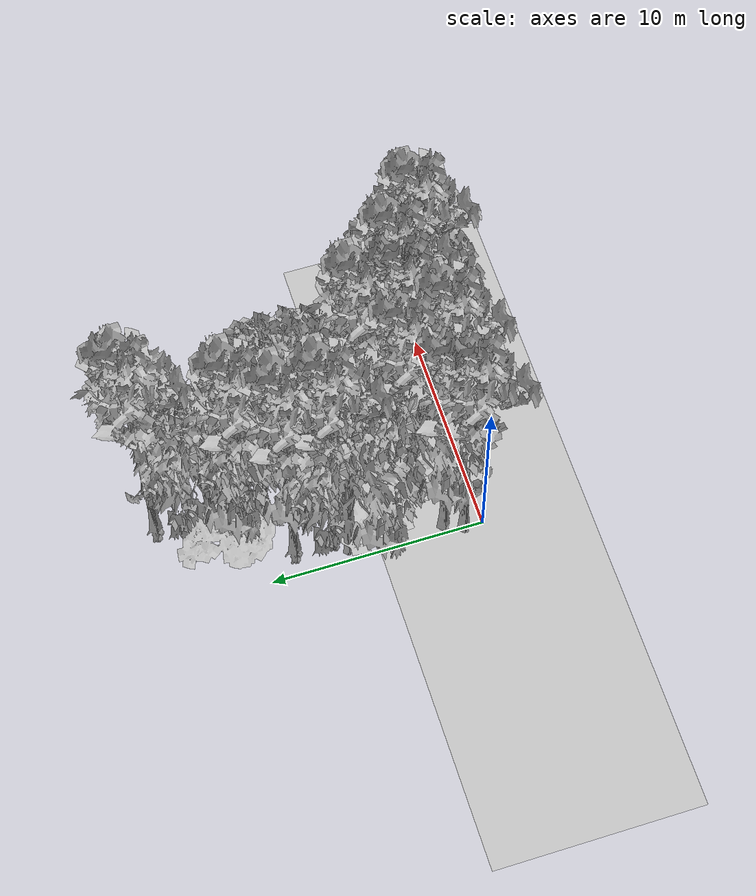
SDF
<sdf version="1.7">
 <world name="default">
  <model name="ground_plane">
   <static>1</static>
   <link name="link">
    <collision name="collision">
     <pose>-50 0 0 0 -0 0</pose>
     <geometry><plane><normal>0 0 1</normal><size>100 100</size></plane></geometry>
     <surface><contact><ode><min_depth>0.01</min_depth><max_vel>0</max_vel></ode></contact></surface>
    </collision>
    <visual name="grass">
     <cast_shadows>0</cast_shadows>
     <geometry>
      <mesh>
       <scale>0.5814285714285714 0.18142857142857144 0.1</scale>
       <uri>file://grass_plane/meshes/grass_plane.dae</uri>
      </mesh>
     </geometry>
    </visual>
   </link>
  </model>
  <model name="Tree 1">
   <static>1</static>
   <pose>2.9768143584794586 2.1918834567805376 0 1.57079 -0 0</pose>
   <link name="link">
    <collision name="collision">
     <geometry><mesh><scale>4 2.5 4</scale><uri>model://tree_1/meshes/tree_1.obj</uri></mesh></geometry>
    </collision>
    <visual name="visual">
     <geometry><mesh><scale>4 2.5 4</scale><uri>model://tree_1/meshes/tree_1.obj</uri></mesh></geometry>
    </visual>
   </link>
  </model>
  <model name="Tree 11">
   <static>1</static>
   <pose>1.2711613512293525 6.7308629670485765 0 1.57079 -0 0</pose>
   <link name="link">
    <collision name="collision">
     <geometry><mesh><scale>3.5 5 3.5</scale><uri>model://tree_9/meshes/tree_9.obj</uri></mesh></geometry>
    </collision>
    <visual name="visual">
     <geometry><mesh><scale>3.5 5 3.5</scale><uri>model://tree_9/meshes/tree_9.obj</uri></mesh></geometry>
    </visual>
   </link>
  </model>
  <model name="Tree 25">
   <static>1</static>
   <pose>8.711538809172538 0.8453942712679599 0 1.57079 -0 0</pose>
   <link name="link">
    <collision name="collision">
     <geometry><mesh><scale>3.5 5 3.5</scale><uri>model://tree_2/meshes/tree_2.obj</uri></mesh></geometry>
    </collision>
    <visual name="visual">
     <geometry><mesh><scale>3.5 5 3.5</scale><uri>model://tree_2/meshes/tree_2.obj</uri></mesh></geometry>
    </visual>
   </link>
  </model>
  <model name="Tree 80">
   <static>1</static>
   <pose>2.5931984307938123 3.0056339749698537 0 1.57079 -0 0</pose>
   <link name="link">
    <collision name="collision">
     <geometry><mesh><scale>3.5 5 3.5</scale><uri>model://tree_9/meshes/tree_9.obj</uri></mesh></geometry>
    </collision>
    <visual name="visual">
     <geometry><mesh><scale>3.5 5 3.5</scale><uri>model://tree_9/meshes/tree_9.obj</uri></mesh></geometry>
    </visual>
   </link>
  </model>
  <model name="Tree 92">
   <static>1</static>
   <pose>5.135952587438652 2.3632091822381476 0 1.57079 -0 0</pose>
   <link name="link">
    <collision name="collision">
     <geometry><mesh><scale>3.5 5 3.5</scale><uri>model://tree_9/meshes/tree_9.obj</uri></mesh></geometry>
    </collision>
    <visual name="visual">
     <geometry><mesh><scale>3.5 5 3.5</scale><uri>model://tree_9/meshes/tree_9.obj</uri></mesh></geometry>
    </visual>
   </link>
  </model>
  <model name="Tree 104">
   <static>1</static>
   <pose>5.468760467974612 2.2380477263403655 0 1.57079 -0 0</pose>
   <link name="link">
    <collision name="collision">
     <geometry><mesh><scale>3.5 5 3.5</scale><uri>model://tree_9/meshes/tree_9.obj</uri></mesh></geometry>
    </collision>
    <visual name="visual">
     <geometry><mesh><scale>3.5 5 3.5</scale><uri>model://tree_9/meshes/tree_9.obj</uri></mesh></geometry>
    </visual>
   </link>
  </model>
  <model name="Tree 111">
   <static>1</static>
   <pose>2.5336864234873957 9.504444543869852 0 1.57079 -0 0</pose>
   <link name="link">
    <collision name="collision">
     <geometry><mesh><scale>3.5 5 3.5</scale><uri>model://tree_2/meshes/tree_2.obj</uri></mesh></geometry>
    </collision>
    <visual name="visual">
     <geometry><mesh><scale>3.5 5 3.5</scale><uri>model://tree_2/meshes/tree_2.obj</uri></mesh></geometry>
    </visual>
   </link>
  </model>
  <model name="Tree 122">
   <static>1</static>
   <pose>2.3813106649626192 10.336020309960649 0 1.57079 -0 0</pose>
   <link name="link">
    <collision name="collision">
     <geometry><mesh><scale>3.5 5 3.5</scale><uri>model://tree_9/meshes/tree_9.obj</uri></mesh></geometry>
    </collision>
    <visual name="visual">
     <geometry><mesh><scale>3.5 5 3.5</scale><uri>model://tree_9/meshes/tree_9.obj</uri></mesh></geometry>
    </visual>
   </link>
  </model>
  <model name="Tree 153">
   <static>1</static>
   <pose>5.225008590443302 4.149534002863987 0 1.57079 -0 0</pose>
   <link name="link">
    <collision name="collision">
     <geometry><mesh><scale>3.5 5 3.5</scale><uri>model://tree_9/meshes/tree_9.obj</uri></mesh></geometry>
    </collision>
    <visual name="visual">
     <geometry><mesh><scale>3.5 5 3.5</scale><uri>model://tree_9/meshes/tree_9.obj</uri></mesh></geometry>
    </visual>
   </link>
  </model>
  <model name="Tree 159">
   <static>1</static>
   <pose>1.1919828114035198 8.599450049801973 0 1.57079 -0 0</pose>
   <link name="link">
    <collision name="collision">
     <geometry><mesh><scale>3.5 5 3.5</scale><uri>model://tree_9/meshes/tree_9.obj</uri></mesh></geometry>
    </collision>
    <visual name="visual">
     <geometry><mesh><scale>3.5 5 3.5</scale><uri>model://tree_9/meshes/tree_9.obj</uri></mesh></geometry>
    </visual>
   </link>
  </model>
  <model name="Tree 189">
   <static>1</static>
   <pose>1.5428746860918778 3.045330921053786 0 1.57079 -0 0</pose>
   <link name="link">
    <collision name="collision">
     <geometry><mesh><scale>3.5 5 3.5</scale><uri>model://tree_2/meshes/tree_2.obj</uri></mesh></geometry>
    </collision>
    <visual name="visual">
     <geometry><mesh><scale>3.5 5 3.5</scale><uri>model://tree_2/meshes/tree_2.obj</uri></mesh></geometry>
    </visual>
   </link>
  </model>
  <model name="Tree 201">
   <static>1</static>
   <pose>3.2090852516246287 0.8835617806367893 0 1.57079 -0 0</pose>
   <link name="link">
    <collision name="collision">
     <geometry><mesh><scale>3.5 5 3.5</scale><uri>model://tree_9/meshes/tree_9.obj</uri></mesh></geometry>
    </collision>
    <visual name="visual">
     <geometry><mesh><scale>3.5 5 3.5</scale><uri>model://tree_9/meshes/tree_9.obj</uri></mesh></geometry>
    </visual>
   </link>
  </model>
  <model name="Tree 224">
   <static>1</static>
   <pose>0.38586800855991754 1.777851857588825 0 1.57079 -0 0</pose>
   <link name="link">
    <collision name="collision">
     <geometry><mesh><scale>3.5 5 3.5</scale><uri>model://tree_9/meshes/tree_9.obj</uri></mesh></geometry>
    </collision>
    <visual name="visual">
     <geometry><mesh><scale>3.5 5 3.5</scale><uri>model://tree_9/meshes/tree_9.obj</uri></mesh></geometry>
    </visual>
   </link>
  </model>
  <model name="Tree 255">
   <static>1</static>
   <pose>2.4988909800807093 3.874488966499051 0 1.57079 -0 0</pose>
   <link name="link">
    <collision name="collision">
     <geometry><mesh><scale>3 2 3</scale><uri>model://tree_3/meshes/tree_3.obj</uri></mesh></geometry>
    </collision>
    <visual name="visual">
     <geometry><mesh><scale>3 2 3</scale><uri>model://tree_3/meshes/tree_3.obj</uri></mesh></geometry>
    </visual>
   </link>
  </model>
  <model name="Tree 298">
   <static>1</static>
   <pose>2.894230501235107 11.887512312333616 0 1.57079 -0 0</pose>
   <link name="link">
    <collision name="collision">
     <geometry><mesh><scale>3.5 5 3.5</scale><uri>model://tree_2/meshes/tree_2.obj</uri></mesh></geometry>
    </collision>
    <visual name="visual">
     <geometry><mesh><scale>3.5 5 3.5</scale><uri>model://tree_2/meshes/tree_2.obj</uri></mesh></geometry>
    </visual>
   </link>
  </model>
  <model name="Tree 389">
   <static>1</static>
   <pose>4.159104768891396 14.333407730832619 0 1.57079 -0 0</pose>
   <link name="link">
    <collision name="collision">
     <geometry><mesh><scale>3.5 5 3.5</scale><uri>model://tree_9/meshes/tree_9.obj</uri></mesh></geometry>
    </collision>
    <visual name="visual">
     <geometry><mesh><scale>3.5 5 3.5</scale><uri>model://tree_9/meshes/tree_9.obj</uri></mesh></geometry>
    </visual>
   </link>
  </model>
  <model name="Tree 423">
   <static>1</static>
   <pose>8.893620390219965 0.49660748641703556 0 1.57079 -0 0</pose>
   <link name="link">
    <collision name="collision">
     <geometry><mesh><scale>3.5 5 3.5</scale><uri>model://tree_9/meshes/tree_9.obj</uri></mesh></geometry>
    </collision>
    <visual name="visual">
     <geometry><mesh><scale>3.5 5 3.5</scale><uri>model://tree_9/meshes/tree_9.obj</uri></mesh></geometry>
    </visual>
   </link>
  </model>
  <model name="Tree 457">
   <static>1</static>
   <pose>5.030697210412271 7.640642308969998 0 1.57079 -0 0</pose>
   <link name="link">
    <collision name="collision">
     <geometry><mesh><scale>3.5 5 3.5</scale><uri>model://tree_2/meshes/tree_2.obj</uri></mesh></geometry>
    </collision>
    <visual name="visual">
     <geometry><mesh><scale>3.5 5 3.5</scale><uri>model://tree_2/meshes/tree_2.obj</uri></mesh></geometry>
    </visual>
   </link>
  </model>
  <model name="Tree 477">
   <static>1</static>
   <pose>0.3308922468631863 6.270582500308919 0 1.57079 -0 0</pose>
   <link name="link">
    <collision name="collision">
     <geometry><mesh><scale>3.5 5 3.5</scale><uri>model://tree_2/meshes/tree_2.obj</uri></mesh></geometry>
    </collision>
    <visual name="visual">
     <geometry><mesh><scale>3.5 5 3.5</scale><uri>model://tree_2/meshes/tree_2.obj</uri></mesh></geometry>
    </visual>
   </link>
  </model>
  <model name="Tree 484">
   <static>1</static>
   <pose>6.999295898549015 2.0139887858261964 0 1.57079 -0 0</pose>
   <link name="link">
    <collision name="collision">
     <geometry><mesh><scale>3.5 5 3.5</scale><uri>model://tree_9/meshes/tree_9.obj</uri></mesh></geometry>
    </collision>
    <visual name="visual">
     <geometry><mesh><scale>3.5 5 3.5</scale><uri>model://tree_9/meshes/tree_9.obj</uri></mesh></geometry>
    </visual>
   </link>
  </model>
  <model name="Tree 496">
   <static>1</static>
   <pose>2.256262525305985 11.274928437548176 0 1.57079 -0 0</pose>
   <link name="link">
    <collision name="collision">
     <geometry><mesh><scale>4 2.5 4</scale><uri>model://tree_1/meshes/tree_1.obj</uri></mesh></geometry>
    </collision>
    <visual name="visual">
     <geometry><mesh><scale>4 2.5 4</scale><uri>model://tree_1/meshes/tree_1.obj</uri></mesh></geometry>
    </visual>
   </link>
  </model>
  <model name="Tree 525">
   <static>1</static>
   <pose>1.7415608408153531 5.043747239571161 0 1.57079 -0 0</pose>
   <link name="link">
    <collision name="collision">
     <geometry><mesh><scale>3 2 3</scale><uri>model://tree_3/meshes/tree_3.obj</uri></mesh></geometry>
    </collision>
    <visual name="visual">
     <geometry><mesh><scale>3 2 3</scale><uri>model://tree_3/meshes/tree_3.obj</uri></mesh></geometry>
    </visual>
   </link>
  </model>
  <model name="Tree 527">
   <static>1</static>
   <pose>0.026049682932296037 0.9247518619357749 0 1.57079 -0 0</pose>
   <link name="link">
    <collision name="collision">
     <geometry><mesh><scale>3.5 5 3.5</scale><uri>model://tree_9/meshes/tree_9.obj</uri></mesh></geometry>
    </collision>
    <visual name="visual">
     <geometry><mesh><scale>3.5 5 3.5</scale><uri>model://tree_9/meshes/tree_9.obj</uri></mesh></geometry>
    </visual>
   </link>
  </model>
 </world>
</sdf>
